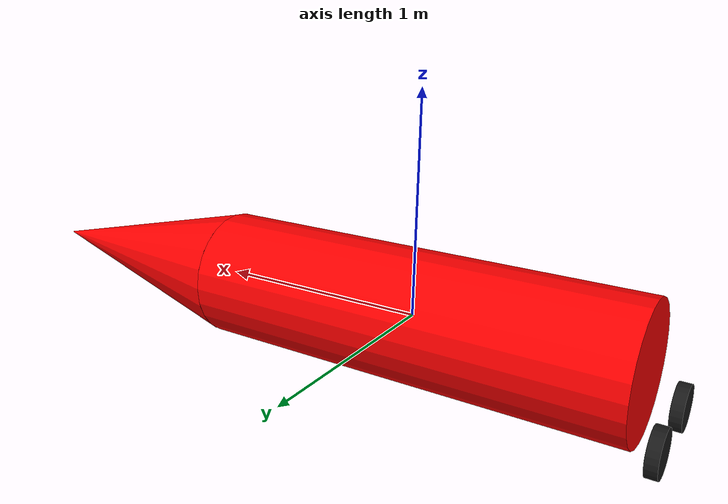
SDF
<?xml version="1.0" ?>
<sdf version="1.9">
  <model name="vessel_v1">
    <link name="base_link">

      <inertial>
        <mass>350.0</mass>
        <pose> -0.08 0 0 0 0 0</pose>
        <inertia>
          <ixx>15.0</ixx> <iyy>125.0</iyy> <izz>125.0</izz>
          <ixy>0.0</ixy> <ixz>0.0</ixz> <iyz>0.0</iyz>
        </inertia>
      </inertial>

      <collision name="collision_cylinder">
        <pose>0 0 0 0 1.5708 0</pose>
        <geometry>
          <cylinder>
            <radius>0.3</radius>
            <length>2.0</length>
          </cylinder>
        </geometry>
      </collision>

      <collision name="collision_cone">
        <pose>1.625 0 0 0 1.5708 0</pose>
        <geometry>
          <cone>
            <radius>0.3</radius>
            <length>1.25</length>
          </cone>
        </geometry>
      </collision>

      <visual name="visual_cylinder">
        <pose>0 0 0 0 1.5708 0</pose>
        <geometry>
          <cylinder>
            <radius>0.3</radius>
            <length>2.0</length>
          </cylinder>
        </geometry>
        <material>
          <ambient>1.0 0.0 0.0 1.0</ambient>
          <diffuse>1.0 0.0 0.0 1.0</diffuse>
        </material>
      </visual>

      <visual name="visual_cone">
        <pose>1.625 0 0 0 1.5708 0</pose>
        <geometry>
          <cone>
            <radius>0.3</radius>
            <length>1.25</length>
          </cone>
        </geometry>
        <material>
          <ambient>1.0 0.0 0.0 1.0</ambient>
          <diffuse>1.0 0.0 0.0 1.0</diffuse>
        </material>
      </visual>

    </link>

    <link name="left_propeller">
      <pose>-1.1 0.2 -0.2 0 1.5708 0</pose>
      <inertial>
        <mass>0.5</mass>
        <inertia><ixx>0.001</ixx><iyy>0.001</iyy><izz>0.001</izz></inertia>
      </inertial>
      <visual name="left_prop_visual">
        <geometry><cylinder><radius>0.1</radius><length>0.05</length></cylinder></geometry>
        <material><ambient>0.1 0.1 0.1 1</ambient><diffuse>0.1 0.1 0.1 1</diffuse></material>
      </visual>
    </link>

    <link name="right_propeller">
      <pose>-1.1 -0.2 -0.2 0 1.5708 0</pose>
      <inertial>
        <mass>0.5</mass>
        <inertia><ixx>0.001</ixx><iyy>0.001</iyy><izz>0.001</izz></inertia>
      </inertial>
      <visual name="right_prop_visual">
        <geometry><cylinder><radius>0.1</radius><length>0.05</length></cylinder></geometry>
        <material><ambient>0.1 0.1 0.1 1</ambient><diffuse>0.1 0.1 0.1 1</diffuse></material>
      </visual>
    </link>

    <joint name="left_engine_joint" type="revolute">
      <parent>base_link</parent>
      <child>left_propeller</child>
      <axis>
        <xyz>0 0 1</xyz> </axis>
    </joint>

    <joint name="right_engine_joint" type="revolute">
      <parent>base_link</parent>
      <child>right_propeller</child>
      <axis>
        <xyz>0 0 1</xyz>
      </axis>
    </joint>

    <plugin filename="gz-sim-hydrodynamics-system" name="gz::sim::systems::Hydrodynamics">
      <!-- forza su su x.y.z -->
      <link_name>base_link</link_name>
      <xU>-51.3</xU>
    <xAbsU>-72.4</xAbsU>
      <yV>-40.0</yV>
      <yAbsV>0.0</yAbsV>
      <zW>-500.0</zW>
      <!-- momento frenante su x.y.z, linear dumping: basse velocità-->
      <kP>-50.0</kP>
      <mQ>-50.0.0</mQ>
      <nR>-400.0</nR>
      <!-- smorzamento quadratico, damping-drag: alte vleocità -->
    </plugin>

    <plugin filename="gz-sim-pose-publisher-system" name="gz::sim::systems::PosePublisher">
      <publish_link_pose>true</publish_link_pose>
      <use_pose_vector_msg>true</use_pose_vector_msg>
      <publish_nested_model_pose>true</publish_nested_model_pose>
      <update_frequency>50</update_frequency>
    </plugin>

    <plugin filename="gz-sim-thruster-system" name="gz::sim::systems::Thruster">
      <namespace>vessel_v1</namespace>
      <joint_name>left_engine_joint</joint_name>
      <thrust_coefficient>0.02</thrust_coefficient>
      <fluid_density>1025.0</fluid_density>
      <propeller_diameter>0.2</propeller_diameter>
    </plugin>

    <plugin filename="gz-sim-thruster-system" name="gz::sim::systems::Thruster">
      <namespace>vessel_v1</namespace>
      <joint_name>right_engine_joint</joint_name>
      <thrust_coefficient>0.02</thrust_coefficient>
      <fluid_density>1025.0</fluid_density>
      <propeller_diameter>0.2</propeller_diameter>
    </plugin>

  </model>
</sdf>
